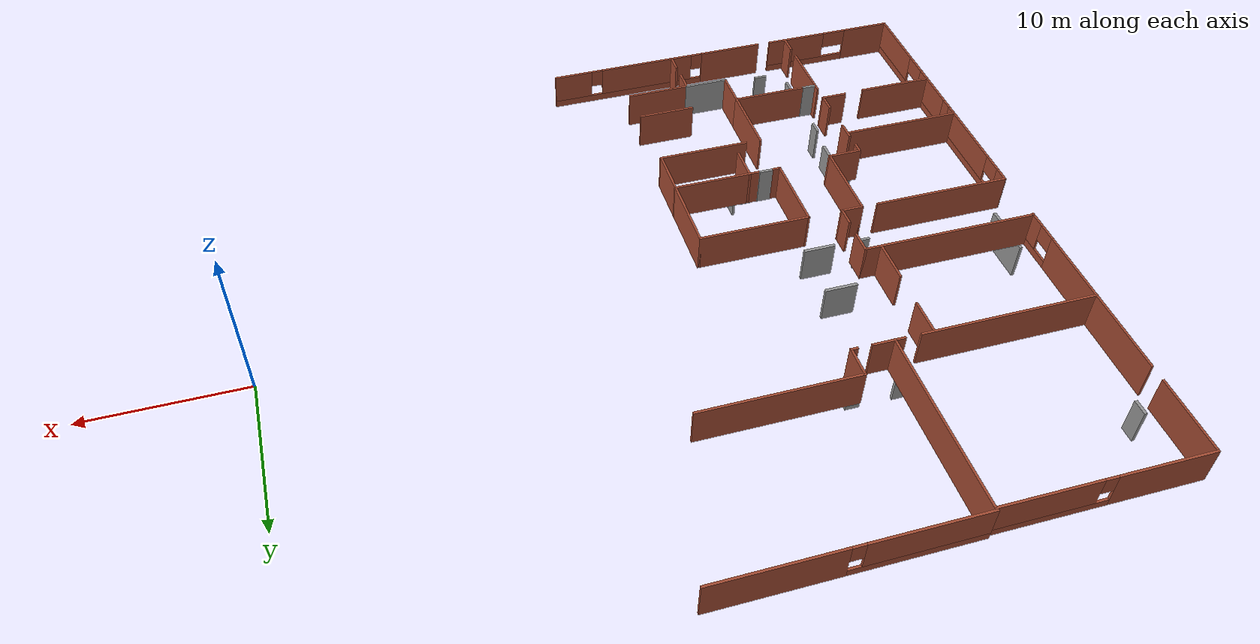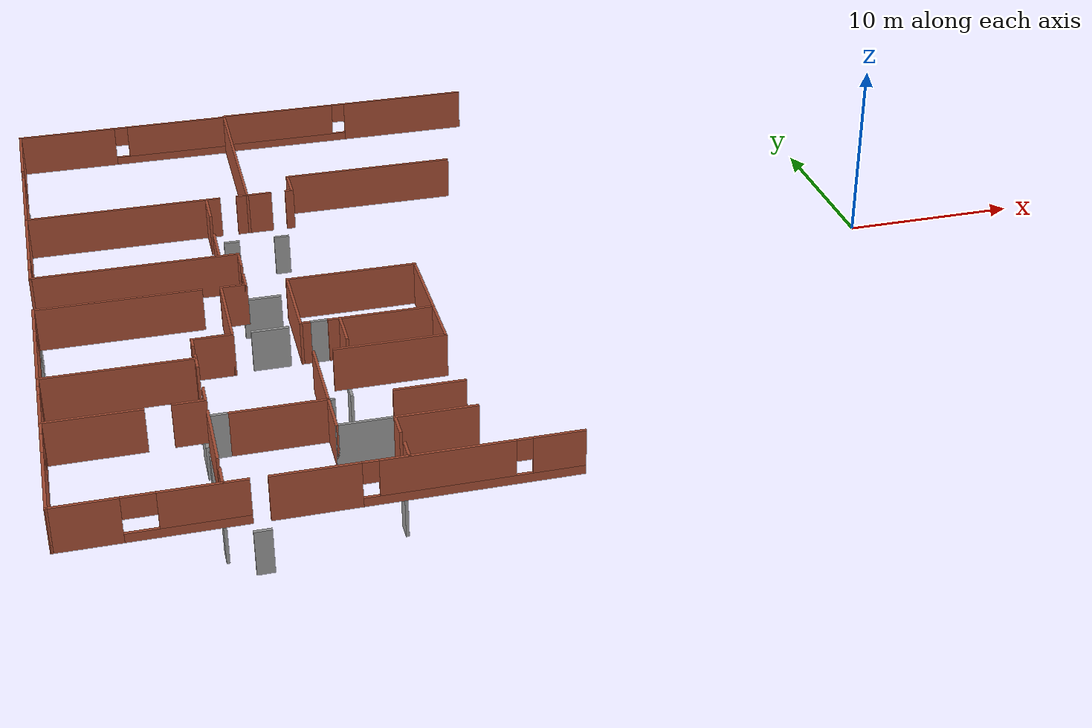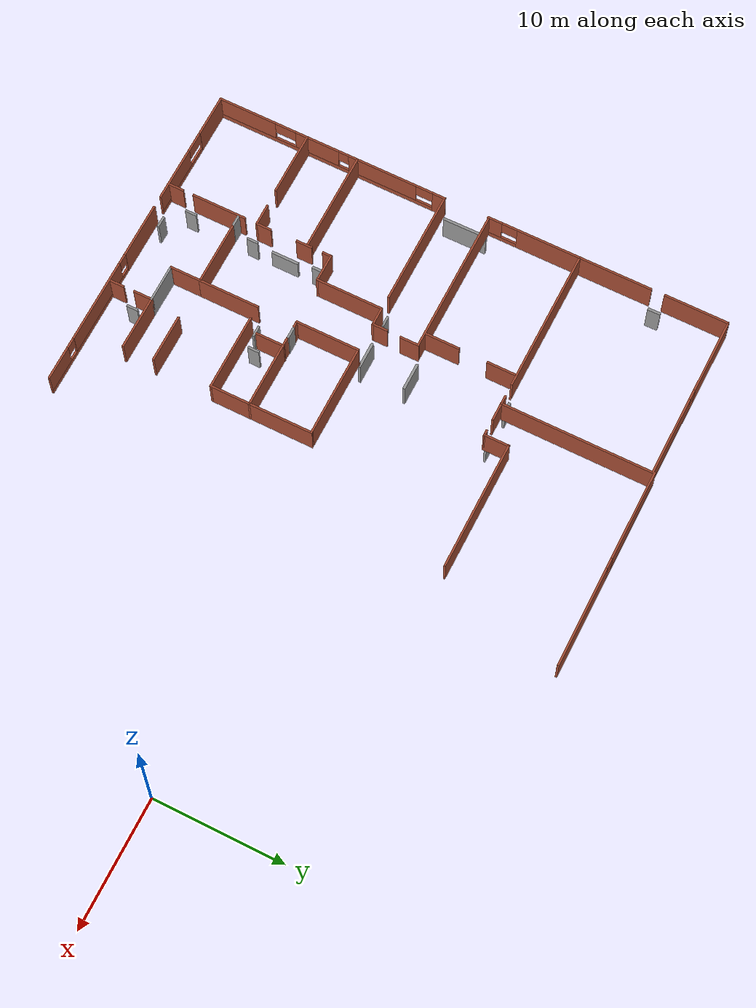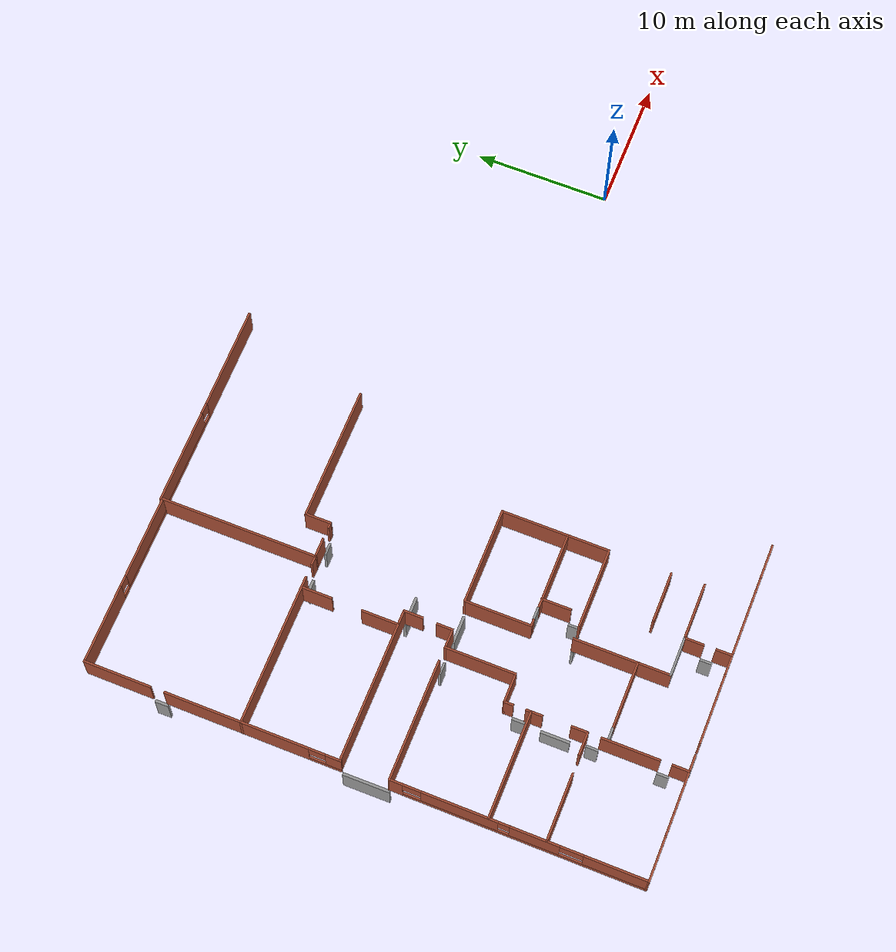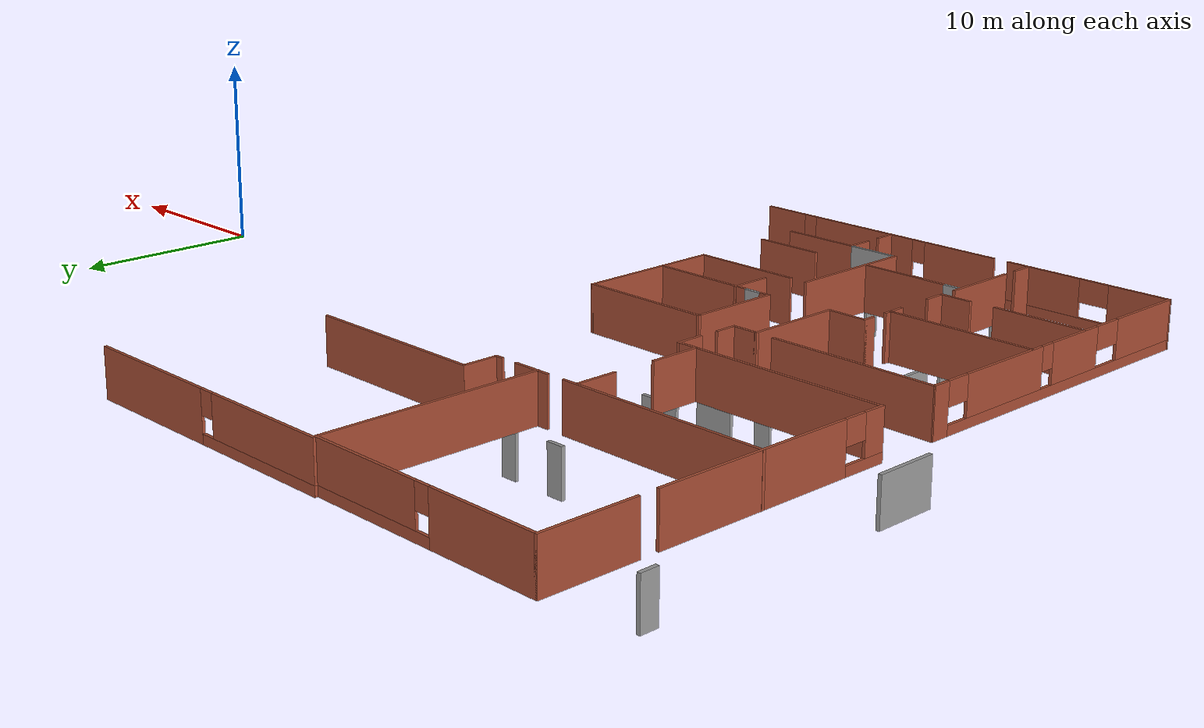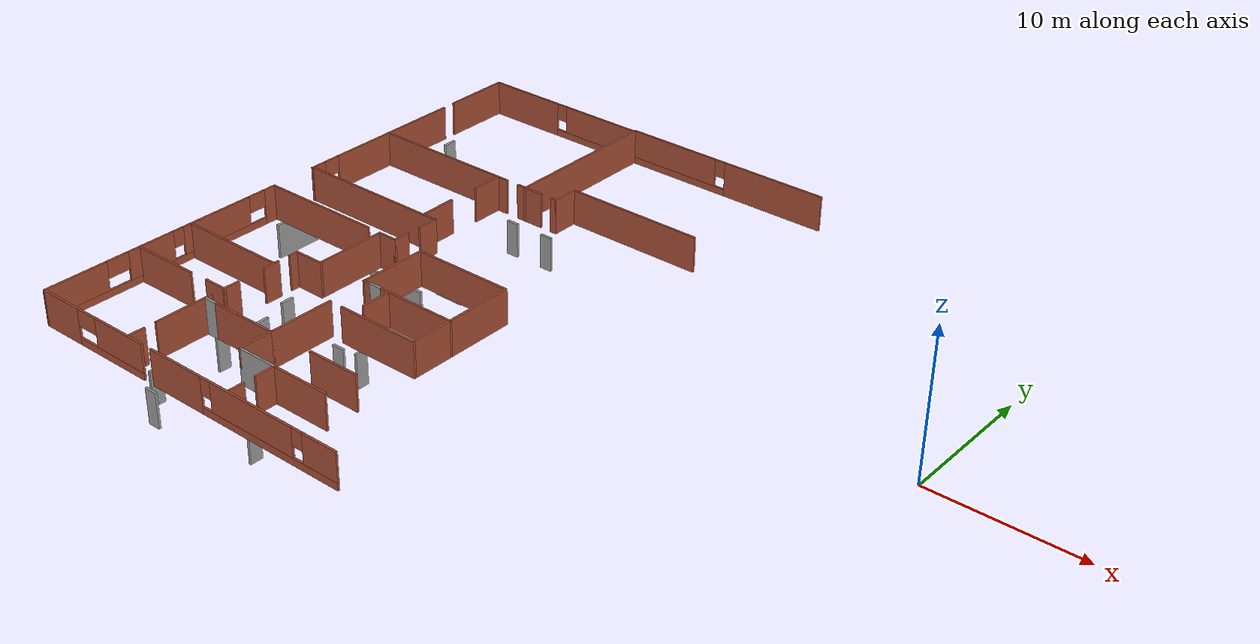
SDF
<sdf version="1.6">
 <model name="Bainer_Hall_FP">
  <pose>1.25513 -0.156837 0 0 -0 0</pose>
  <link name="Door_10">
   <collision name="Door_10_Collision">
    <geometry><box><size>0.9 0.17 2.5</size></box></geometry>
    <pose>0 0 1.25 0 -0 0</pose>
   </collision>
   <visual name="Door_10_Visual">
    <pose>0 0 1.25 0 -0 0</pose>
    <geometry><box><size>0.9 0.17 2.5</size></box></geometry>
    <material>
     <script><uri>file://media/materials/scripts/gazebo.material</uri><name>Gazebo/Grey</name></script>
    </material>
   </visual>
   <pose>-34.5626 8.65196 -3 0 -0 0</pose>
  </link>
  <link name="Door_12">
   <collision name="Door_12_Collision">
    <geometry><box><size>2.165 0.2 2.5</size></box></geometry>
    <pose>0 0 1.25 0 -0 0</pose>
   </collision>
   <visual name="Door_12_Visual">
    <pose>0 0 1.25 0 -0 0</pose>
    <geometry><box><size>2.165 0.2 2.5</size></box></geometry>
    <material>
     <script><uri>file://media/materials/scripts/gazebo.material</uri><name>Gazebo/Grey</name></script>
    </material>
   </visual>
   <pose>-36.6968 1.50114 -3 0 -0 0</pose>
  </link>
  <link name="Door_29">
   <collision name="Door_29_Collision">
    <geometry><box><size>0.9 0.17 2.5</size></box></geometry>
    <pose>0 0 1.25 0 -0 0</pose>
   </collision>
   <visual name="Door_29_Visual">
    <pose>0 0 1.25 0 -0 0</pose>
    <geometry><box><size>0.9 0.17 2.5</size></box></geometry>
    <material>
     <script><uri>file://media/materials/scripts/gazebo.material</uri><name>Gazebo/Grey</name></script>
    </material>
   </visual>
   <pose>-39.7621 -2.07664 -3 0 0 -3.14159</pose>
  </link>
  <link name="Door_30">
   <collision name="Door_30_Collision">
    <geometry><box><size>2.11069 0.2 2.5</size></box></geometry>
    <pose>0 0 1.25 0 -0 0</pose>
   </collision>
   <visual name="Door_30_Visual">
    <pose>0 0 1.25 0 -0 0</pose>
    <geometry><box><size>2.11069 0.2 2.5</size></box></geometry>
    <material>
     <script><uri>file://media/materials/scripts/gazebo.material</uri><name>Gazebo/Grey</name></script>
    </material>
   </visual>
   <pose>-36.7462 -2.09134 -3 0 -0 0</pose>
  </link>
  <link name="Door_31">
   <collision name="Door_31_Collision">
    <geometry><box><size>0.9 0.17 2.5</size></box></geometry>
    <pose>0 0 1.25 0 -0 0</pose>
   </collision>
   <visual name="Door_31_Visual">
    <pose>0 0 1.25 0 -0 0</pose>
    <geometry><box><size>0.9 0.17 2.5</size></box></geometry>
    <material>
     <script><uri>file://media/materials/scripts/gazebo.material</uri><name>Gazebo/Grey</name></script>
    </material>
   </visual>
   <pose>-34.6539 -6.91196 0 0 -0 0</pose>
  </link>
  <link name="Door_49">
   <collision name="Door_49_Collision">
    <geometry><box><size>0.94 0.2 2.5</size></box></geometry>
    <pose>0 0 1.25 0 -0 0</pose>
   </collision>
   <visual name="Door_49_Visual">
    <pose>0 0 1.25 0 -0 0</pose>
    <geometry><box><size>0.94 0.2 2.5</size></box></geometry>
    <material>
     <script><uri>file://media/materials/scripts/gazebo.material</uri><name>Gazebo/Grey</name></script>
    </material>
   </visual>
   <pose>-41.3093 -8.28276 -3 0 -0 1.57919</pose>
  </link>
  <link name="Door_50">
   <collision name="Door_50_Collision">
    <geometry><box><size>2.14227 0.2 2</size></box></geometry>
    <pose>0 0 1 0 -0 0</pose>
   </collision>
   <visual name="Door_50_Visual">
    <pose>0 0 1 0 -0 0</pose>
    <geometry><box><size>2.14227 0.2 2</size></box></geometry>
    <material>
     <script><uri>file://media/materials/scripts/gazebo.material</uri><name>Gazebo/Grey</name></script>
    </material>
   </visual>
   <pose>-41.3097 -10.9944 -3 0 -0 1.5708</pose>
  </link>
  <link name="Door_51">
   <collision name="Door_51_Collision">
    <geometry><box><size>0.9 0.17 2.5</size></box></geometry>
    <pose>0 0 1.25 0 -0 0</pose>
   </collision>
   <visual name="Door_51_Visual">
    <pose>0 0 1.25 0 -0 0</pose>
    <geometry><box><size>0.9 0.17 2.5</size></box></geometry>
    <material>
     <script><uri>file://media/materials/scripts/gazebo.material</uri><name>Gazebo/Grey</name></script>
    </material>
   </visual>
   <pose>-41.2641 -13.6308 -3 0 0 -1.57632</pose>
  </link>
  <link name="Door_52">
   <collision name="Door_52_Collision">
    <geometry><box><size>0.9 0.17 2.5</size></box></geometry>
    <pose>0 0 1.25 0 -0 0</pose>
   </collision>
   <visual name="Door_52_Visual">
    <pose>0 0 1.25 0 -0 0</pose>
    <geometry><box><size>0.9 0.17 2.5</size></box></geometry>
    <material>
     <script><uri>file://media/materials/scripts/gazebo.material</uri><name>Gazebo/Grey</name></script>
    </material>
   </visual>
   <pose>-41.2637 -18.7055 -3 0 -0 1.5708</pose>
  </link>
  <link name="Door_53">
   <collision name="Door_53_Collision">
    <geometry><box><size>0.9 0.17 2.5</size></box></geometry>
    <pose>0 0 1.25 0 -0 0</pose>
   </collision>
   <visual name="Door_53_Visual">
    <pose>0 0 1.25 0 -0 0</pose>
    <geometry><box><size>0.9 0.17 2.5</size></box></geometry>
    <material>
     <script><uri>file://media/materials/scripts/gazebo.material</uri><name>Gazebo/Grey</name></script>
    </material>
   </visual>
   <pose>-40.7662 -14.5556 0 0 -0 0</pose>
  </link>
  <link name="Door_54">
   <collision name="Door_54_Collision">
    <geometry><box><size>0.9 0.17 2.5</size></box></geometry>
    <pose>0 0 1.25 0 -0 0</pose>
   </collision>
   <visual name="Door_54_Visual">
    <pose>0 0 1.25 0 -0 0</pose>
    <geometry><box><size>0.9 0.17 2.5</size></box></geometry>
    <material>
     <script><uri>file://media/materials/scripts/gazebo.material</uri><name>Gazebo/Grey</name></script>
    </material>
   </visual>
   <pose>-32.5666 -18.7651 -3 0 0 -1.5708</pose>
  </link>
  <link name="Door_56">
   <collision name="Door_56_Collision">
    <geometry><box><size>0.9 0.17 2.5</size></box></geometry>
    <pose>0 0 1.25 0 -0 0</pose>
   </collision>
   <visual name="Door_56_Visual">
    <pose>0 0 1.25 0 -0 0</pose>
    <geometry><box><size>0.9 0.17 2.5</size></box></geometry>
    <material>
     <script><uri>file://media/materials/scripts/gazebo.material</uri><name>Gazebo/Grey</name></script>
    </material>
   </visual>
   <pose>-34.8989 -9.9638 -3 0 -0 0</pose>
  </link>
  <link name="Door_57">
   <collision name="Door_57_Collision">
    <geometry><box><size>0.9 0.17 2.5</size></box></geometry>
    <pose>0 0 1.25 0 -0 0</pose>
   </collision>
   <visual name="Door_57_Visual">
    <pose>0 0 1.25 0 -0 0</pose>
    <geometry><box><size>0.9 0.17 2.5</size></box></geometry>
    <material>
     <script><uri>file://media/materials/scripts/gazebo.material</uri><name>Gazebo/Grey</name></script>
    </material>
   </visual>
   <pose>-33.5499 -9.44231 -3 0 -0 1.5708</pose>
  </link>
  <link name="Door_59">
   <collision name="Door_59_Collision">
    <geometry><box><size>0.9 0.17 2.5</size></box></geometry>
    <pose>0 0 1.25 0 -0 0</pose>
   </collision>
   <visual name="Door_59_Visual">
    <pose>0 0 1.25 0 -0 0</pose>
    <geometry><box><size>0.9 0.17 2.5</size></box></geometry>
    <material>
     <script><uri>file://media/materials/scripts/gazebo.material</uri><name>Gazebo/Grey</name></script>
    </material>
   </visual>
   <pose>-39.6193 -20.3098 -3 0 -0 0</pose>
  </link>
  <link name="Door_6">
   <collision name="Door_6_Collision">
    <geometry><box><size>0.992 0.2 2.5</size></box></geometry>
    <pose>0 0 1.25 0 -0 0</pose>
   </collision>
   <visual name="Door_6_Visual">
    <pose>0 0 1.25 0 -0 0</pose>
    <geometry><box><size>0.992 0.2 2.5</size></box></geometry>
    <material>
     <script><uri>file://media/materials/scripts/gazebo.material</uri><name>Gazebo/Grey</name></script>
    </material>
   </visual>
   <pose>-49.1881 14.7778 -3 0 0 -1.55735</pose>
  </link>
  <link name="Door_78">
   <collision name="Door_78_Collision">
    <geometry><box><size>3.44 0.2 2.5</size></box></geometry>
    <pose>0 0 1.25 0 -0 0</pose>
   </collision>
   <visual name="Door_78_Visual">
    <pose>0 0 1.25 0 -0 0</pose>
    <geometry><box><size>3.44 0.2 2.5</size></box></geometry>
    <material>
     <script><uri>file://media/materials/scripts/gazebo.material</uri><name>Gazebo/Grey</name></script>
    </material>
   </visual>
   <pose>-49.1641 -0.320163 -3 0 -0 1.57718</pose>
  </link>
  <link name="Door_9">
   <collision name="Door_9_Collision">
    <geometry><box><size>0.927 0.2 2.5</size></box></geometry>
    <pose>0 0 1.25 0 -0 0</pose>
   </collision>
   <visual name="Door_9_Visual">
    <pose>0 0 1.25 0 -0 0</pose>
    <geometry><box><size>0.927 0.2 2.5</size></box></geometry>
    <material>
     <script><uri>file://media/materials/scripts/gazebo.material</uri><name>Gazebo/Grey</name></script>
    </material>
   </visual>
   <pose>-37.5493 8.66307 -3 0 -0 0</pose>
  </link>
  <link name="Wall_139">
   <collision name="Wall_139_Collision">
    <geometry><box><size>5 0.15 2.5</size></box></geometry>
    <pose>0 0 1.25 0 -0 0</pose>
   </collision>
   <visual name="Wall_139_Visual">
    <pose>0 0 1.25 0 -0 0</pose>
    <geometry><box><size>5 0.15 2.5</size></box></geometry>
    <material>
     <script><uri>file://media/materials/scripts/gazebo.material</uri><name>Gazebo/Bricks</name></script>
     <ambient>1 1 1 1</ambient>
    </material>
   </visual>
   <pose>-49.1917 17.7539 0 0 0 -1.5708</pose>
  </link>
  <link name="Wall_141">
   <pose>-49.1778 7.83841 0 0 0 -1.5708</pose>
   <visual name="Wall_141_Visual_0">
    <pose>-1.18334 0 1.25 0 -0 0</pose>
    <geometry><box><size>10.5535 0.15 2.5</size></box></geometry>
    <material>
     <script><uri>file://media/materials/scripts/gazebo.material</uri><name>Gazebo/Bricks</name></script>
     <ambient>1 1 1 1</ambient>
    </material>
   </visual>
   <collision name="Wall_141_Collision_0">
    <geometry><box><size>10.5535 0.15 2.5</size></box></geometry>
    <pose>-1.18334 0 1.25 0 -0 0</pose>
   </collision>
   <visual name="Wall_141_Visual_1">
    <pose>5.27675 0 0.25 0 -0 0</pose>
    <geometry><box><size>2.36667 0.15 0.5</size></box></geometry>
    <material>
     <script><uri>file://media/materials/scripts/gazebo.material</uri><name>Gazebo/Bricks</name></script>
     <ambient>1 1 1 1</ambient>
    </material>
   </visual>
   <collision name="Wall_141_Collision_1">
    <geometry><box><size>2.36667 0.15 0.5</size></box></geometry>
    <pose>5.27675 0 0.25 0 -0 0</pose>
   </collision>
   <visual name="Wall_141_Visual_2">
    <pose>5.8765 0 1.5 0 -0 0</pose>
    <geometry><box><size>1.16716 0.15 2</size></box></geometry>
    <material>
     <script><uri>file://media/materials/scripts/gazebo.material</uri><name>Gazebo/Bricks</name></script>
     <ambient>1 1 1 1</ambient>
    </material>
   </visual>
   <collision name="Wall_141_Collision_2">
    <geometry><box><size>1.16716 0.15 2</size></box></geometry>
    <pose>5.8765 0 1.5 0 -0 0</pose>
   </collision>
   <visual name="Wall_141_Visual_3">
    <pose>4.69316 0 1.9 0 -0 0</pose>
    <geometry><box><size>1.19951 0.15 1.2</size></box></geometry>
    <material>
     <script><uri>file://media/materials/scripts/gazebo.material</uri><name>Gazebo/Bricks</name></script>
     <ambient>1 1 1 1</ambient>
    </material>
   </visual>
   <collision name="Wall_141_Collision_3">
    <geometry><box><size>1.19951 0.15 1.2</size></box></geometry>
    <pose>4.69316 0 1.9 0 -0 0</pose>
   </collision>
  </link>
  <link name="Wall_142">
   <collision name="Wall_142_Collision">
    <geometry><box><size>11.5 0.15 2.5</size></box></geometry>
    <pose>0 0 1.25 0 -0 0</pose>
   </collision>
   <visual name="Wall_142_Visual">
    <pose>0 0 1.25 0 -0 0</pose>
    <geometry><box><size>11.5 0.15 2.5</size></box></geometry>
    <material>
     <script><uri>file://media/materials/scripts/gazebo.material</uri><name>Gazebo/Bricks</name></script>
     <ambient>1 1 1 1</ambient>
    </material>
   </visual>
   <pose>-43.5028 1.49587 0 0 -0 0</pose>
  </link>
  <link name="Wall_144">
   <pose>-38.8763 2.85932 0 0 -0 1.5708</pose>
   <visual name="Wall_144_Visual_0">
    <pose>-0.012077 0 1.25 0 -0 0</pose>
    <geometry><box><size>2.72585 0.15 2.5</size></box></geometry>
    <material>
     <script><uri>file://media/materials/scripts/gazebo.material</uri><name>Gazebo/Bricks</name></script>
     <ambient>1 1 1 1</ambient>
    </material>
   </visual>
   <collision name="Wall_144_Collision_0">
    <geometry><box><size>2.72585 0.15 2.5</size></box></geometry>
    <pose>-0.012077 0 1.25 0 -0 0</pose>
   </collision>
  </link>
  <link name="Wall_146">
   <collision name="Wall_146_Collision">
    <geometry><box><size>2.25 0.15 2.5</size></box></geometry>
    <pose>0 0 1.25 0 -0 0</pose>
   </collision>
   <visual name="Wall_146_Visual">
    <pose>0 0 1.25 0 -0 0</pose>
    <geometry><box><size>2.25 0.15 2.5</size></box></geometry>
    <material>
     <script><uri>file://media/materials/scripts/gazebo.material</uri><name>Gazebo/Bricks</name></script>
     <ambient>1 1 1 1</ambient>
    </material>
   </visual>
   <pose>-38.8285 7.50163 0 0 -0 1.5708</pose>
  </link>
  <link name="Wall_149">
   <collision name="Wall_149_Collision">
    <geometry><box><size>11.25 0.15 2.5</size></box></geometry>
    <pose>0 0 1.25 0 -0 0</pose>
   </collision>
   <visual name="Wall_149_Visual">
    <pose>0 0 1.25 0 -0 0</pose>
    <geometry><box><size>11.25 0.15 2.5</size></box></geometry>
    <material>
     <script><uri>file://media/materials/scripts/gazebo.material</uri><name>Gazebo/Bricks</name></script>
     <ambient>1 1 1 1</ambient>
    </material>
   </visual>
   <pose>-43.6354 8.66337 0 0 -0 3.14159</pose>
  </link>
  <link name="Wall_151">
   <pose>-42.79 20.1789 0 0 -0 0</pose>
   <visual name="Wall_151_Visual_0">
    <pose>-3.52424 0 1.25 0 -0 0</pose>
    <geometry><box><size>5.85812 0.15 2.5</size></box></geometry>
    <material>
     <script><uri>file://media/materials/scripts/gazebo.material</uri><name>Gazebo/Bricks</name></script>
     <ambient>1 1 1 1</ambient>
    </material>
   </visual>
   <collision name="Wall_151_Collision_0">
    <geometry><box><size>5.85812 0.15 2.5</size></box></geometry>
    <pose>-3.52424 0 1.25 0 -0 0</pose>
   </collision>
   <visual name="Wall_151_Visual_1">
    <pose>2.92906 0 0.25 0 -0 0</pose>
    <geometry><box><size>7.04848 0.15 0.5</size></box></geometry>
    <material>
     <script><uri>file://media/materials/scripts/gazebo.material</uri><name>Gazebo/Bricks</name></script>
     <ambient>1 1 1 1</ambient>
    </material>
   </visual>
   <collision name="Wall_151_Collision_1">
    <geometry><box><size>7.04848 0.15 0.5</size></box></geometry>
    <pose>2.92906 0 0.25 0 -0 0</pose>
   </collision>
   <visual name="Wall_151_Visual_2">
    <pose>3.32906 0 1.5 0 -0 0</pose>
    <geometry><box><size>6.24848 0.15 2</size></box></geometry>
    <material>
     <script><uri>file://media/materials/scripts/gazebo.material</uri><name>Gazebo/Bricks</name></script>
     <ambient>1 1 1 1</ambient>
    </material>
   </visual>
   <collision name="Wall_151_Collision_2">
    <geometry><box><size>6.24848 0.15 2</size></box></geometry>
    <pose>3.32906 0 1.5 0 -0 0</pose>
   </collision>
   <visual name="Wall_151_Visual_3">
    <pose>-0.195183 0 1.9 0 -0 0</pose>
    <geometry><box><size>0.8 0.15 1.2</size></box></geometry>
    <material>
     <script><uri>file://media/materials/scripts/gazebo.material</uri><name>Gazebo/Bricks</name></script>
     <ambient>1 1 1 1</ambient>
    </material>
   </visual>
   <collision name="Wall_151_Collision_3">
    <geometry><box><size>0.8 0.15 1.2</size></box></geometry>
    <pose>-0.195183 0 1.9 0 -0 0</pose>
   </collision>
  </link>
  <link name="Wall_152">
   <collision name="Wall_152_Collision">
    <geometry><box><size>11.6739 0.15 2.5</size></box></geometry>
    <pose>0 0 1.25 0 -0 0</pose>
   </collision>
   <visual name="Wall_152_Visual">
    <pose>0 0 1.25 0 -0 0</pose>
    <geometry><box><size>11.6739 0.15 2.5</size></box></geometry>
    <material>
     <script><uri>file://media/materials/scripts/gazebo.material</uri><name>Gazebo/Bricks</name></script>
     <ambient>1 1 1 1</ambient>
    </material>
   </visual>
   <pose>-36.4117 14.417 0 0 0 -1.5708</pose>
  </link>
  <link name="Wall_153">
   <collision name="Wall_153_Collision">
    <geometry><box><size>0.75 0.15 2.5</size></box></geometry>
    <pose>0 0 1.25 0 -0 0</pose>
   </collision>
   <visual name="Wall_153_Visual">
    <pose>0 0 1.25 0 -0 0</pose>
    <geometry><box><size>0.75 0.15 2.5</size></box></geometry>
    <material>
     <script><uri>file://media/materials/scripts/gazebo.material</uri><name>Gazebo/Bricks</name></script>
     <ambient>1 1 1 1</ambient>
    </material>
   </visual>
   <pose>-36.7117 8.66175 0 0 -0 3.14159</pose>
  </link>
  <link name="Wall_155">
   <collision name="Wall_155_Collision">
    <geometry><box><size>1.5 0.15 2.5</size></box></geometry>
    <pose>0 0 1.25 0 -0 0</pose>
   </collision>
   <visual name="Wall_155_Visual">
    <pose>0 0 1.25 0 -0 0</pose>
    <geometry><box><size>1.5 0.15 2.5</size></box></geometry>
    <material>
     <script><uri>file://media/materials/scripts/gazebo.material</uri><name>Gazebo/Bricks</name></script>
     <ambient>1 1 1 1</ambient>
    </material>
   </visual>
   <pose>-35.7367 8.66175 0 0 -0 0</pose>
  </link>
  <link name="Wall_157">
   <collision name="Wall_157_Collision">
    <geometry><box><size>0.5 0.15 2.5</size></box></geometry>
    <pose>0 0 1.25 0 -0 0</pose>
   </collision>
   <visual name="Wall_157_Visual">
    <pose>0 0 1.25 0 -0 0</pose>
    <geometry><box><size>0.5 0.15 2.5</size></box></geometry>
    <material>
     <script><uri>file://media/materials/scripts/gazebo.material</uri><name>Gazebo/Bricks</name></script>
     <ambient>1 1 1 1</ambient>
    </material>
   </visual>
   <pose>-33.9261 8.65196 0 0 -0 0</pose>
  </link>
  <link name="Wall_158">
   <collision name="Wall_158_Collision">
    <geometry><box><size>2 0.15 2.5</size></box></geometry>
    <pose>0 0 1.25 0 -0 0</pose>
   </collision>
   <visual name="Wall_158_Visual">
    <pose>0 0 1.25 0 -0 0</pose>
    <geometry><box><size>2 0.15 2.5</size></box></geometry>
    <material>
     <script><uri>file://media/materials/scripts/gazebo.material</uri><name>Gazebo/Bricks</name></script>
     <ambient>1 1 1 1</ambient>
    </material>
   </visual>
   <pose>-33.7511 9.57696 0 0 -0 1.5708</pose>
  </link>
  <link name="Wall_161">
   <collision name="Wall_161_Collision">
    <geometry><box><size>10 0.15 2.5</size></box></geometry>
    <pose>0 0 1.25 0 -0 0</pose>
   </collision>
   <visual name="Wall_161_Visual">
    <pose>0 0 1.25 0 -0 0</pose>
    <geometry><box><size>10 0.15 2.5</size></box></geometry>
    <material>
     <script><uri>file://media/materials/scripts/gazebo.material</uri><name>Gazebo/Bricks</name></script>
     <ambient>1 1 1 1</ambient>
    </material>
   </visual>
   <pose>-28.8261 10.502 0 0 -0 0</pose>
  </link>
  <link name="Wall_165">
   <pose>-28.7018 20.3376 0 0 0 -3.13852</pose>
   <visual name="Wall_165_Visual_0">
    <pose>-3.9449 0 1.25 0 -0 0</pose>
    <geometry><box><size>7.72571 0.15 2.5</size></box></geometry>
    <material>
     <script><uri>file://media/materials/scripts/gazebo.material</uri><name>Gazebo/Bricks</name></script>
     <ambient>1 1 1 1</ambient>
    </material>
   </visual>
   <collision name="Wall_165_Collision_0">
    <geometry><box><size>7.72571 0.15 2.5</size></box></geometry>
    <pose>-3.9449 0 1.25 0 -0 0</pose>
   </collision>
   <visual name="Wall_165_Visual_1">
    <pose>3.86285 0 0.25 0 -0 0</pose>
    <geometry><box><size>7.88981 0.15 0.5</size></box></geometry>
    <material>
     <script><uri>file://media/materials/scripts/gazebo.material</uri><name>Gazebo/Bricks</name></script>
     <ambient>1 1 1 1</ambient>
    </material>
   </visual>
   <collision name="Wall_165_Collision_1">
    <geometry><box><size>7.88981 0.15 0.5</size></box></geometry>
    <pose>3.86285 0 0.25 0 -0 0</pose>
   </collision>
   <visual name="Wall_165_Visual_2">
    <pose>4.26285 0 1.5 0 -0 0</pose>
    <geometry><box><size>7.08981 0.15 2</size></box></geometry>
    <material>
     <script><uri>file://media/materials/scripts/gazebo.material</uri><name>Gazebo/Bricks</name></script>
     <ambient>1 1 1 1</ambient>
    </material>
   </visual>
   <collision name="Wall_165_Collision_2">
    <geometry><box><size>7.08981 0.15 2</size></box></geometry>
    <pose>4.26285 0 1.5 0 -0 0</pose>
   </collision>
   <visual name="Wall_165_Visual_3">
    <pose>0.317949 0 1.9 0 -0 0</pose>
    <geometry><box><size>0.8 0.15 1.2</size></box></geometry>
    <material>
     <script><uri>file://media/materials/scripts/gazebo.material</uri><name>Gazebo/Bricks</name></script>
     <ambient>1 1 1 1</ambient>
    </material>
   </visual>
   <collision name="Wall_165_Collision_3">
    <geometry><box><size>0.8 0.15 1.2</size></box></geometry>
    <pose>0.317949 0 1.9 0 -0 0</pose>
   </collision>
  </link>
  <link name="Wall_250">
   <collision name="Wall_250_Collision">
    <geometry><box><size>1.5 0.15 2.5</size></box></geometry>
    <pose>0 0 1.25 0 -0 0</pose>
   </collision>
   <visual name="Wall_250_Visual">
    <pose>0 0 1.25 0 -0 0</pose>
    <geometry><box><size>1.5 0.15 2.5</size></box></geometry>
    <material>
     <script><uri>file://media/materials/scripts/gazebo.material</uri><name>Gazebo/Bricks</name></script>
     <ambient>1 1 1 1</ambient>
    </material>
   </visual>
   <pose>-37.8278 0.820873 0 0 0 -1.5708</pose>
  </link>
  <link name="Wall_252">
   <collision name="Wall_252_Collision">
    <geometry><box><size>1.25 0.15 2.5</size></box></geometry>
    <pose>0 0 1.25 0 -0 0</pose>
   </collision>
   <visual name="Wall_252_Visual">
    <pose>0 0 1.25 0 -0 0</pose>
    <geometry><box><size>1.25 0.15 2.5</size></box></geometry>
    <material>
     <script><uri>file://media/materials/scripts/gazebo.material</uri><name>Gazebo/Bricks</name></script>
     <ambient>1 1 1 1</ambient>
    </material>
   </visual>
   <pose>-37.869 -1.5252 0 0 0 -1.5708</pose>
  </link>
  <link name="Wall_253">
   <collision name="Wall_253_Collision">
    <geometry><box><size>1.5 0.15 2.5</size></box></geometry>
    <pose>0 0 1.25 0 -0 0</pose>
   </collision>
   <visual name="Wall_253_Visual">
    <pose>0 0 1.25 0 -0 0</pose>
    <geometry><box><size>1.5 0.15 2.5</size></box></geometry>
    <material>
     <script><uri>file://media/materials/scripts/gazebo.material</uri><name>Gazebo/Bricks</name></script>
     <ambient>1 1 1 1</ambient>
    </material>
   </visual>
   <pose>-38.544 -2.0752 0 0 -0 3.14159</pose>
  </link>
  <link name="Wall_255">
   <collision name="Wall_255_Collision">
    <geometry><box><size>9 0.15 2.5</size></box></geometry>
    <pose>0 0 1.25 0 -0 0</pose>
   </collision>
   <visual name="Wall_255_Visual">
    <pose>0 0 1.25 0 -0 0</pose>
    <geometry><box><size>9 0.15 2.5</size></box></geometry>
    <material>
     <script><uri>file://media/materials/scripts/gazebo.material</uri><name>Gazebo/Bricks</name></script>
     <ambient>1 1 1 1</ambient>
    </material>
   </visual>
   <pose>-44.7163 -2.04439 0 0 -0 3.14159</pose>
  </link>
  <link name="Wall_256">
   <pose>-49.1661 -11.1698 0 0 0 -1.57351</pose>
   <visual name="Wall_256_Visual_0">
    <pose>-8.68915 0 1.25 0 -0 0</pose>
    <geometry><box><size>1.02252 0.15 2.5</size></box></geometry>
    <material>
     <script><uri>file://media/materials/scripts/gazebo.material</uri><name>Gazebo/Bricks</name></script>
     <ambient>1 1 1 1</ambient>
    </material>
   </visual>
   <collision name="Wall_256_Collision_0">
    <geometry><box><size>1.02252 0.15 2.5</size></box></geometry>
    <pose>-8.68915 0 1.25 0 -0 0</pose>
   </collision>
   <visual name="Wall_256_Visual_1">
    <pose>0.511259 0 0.25 0 -0 0</pose>
    <geometry><box><size>17.3783 0.15 0.5</size></box></geometry>
    <material>
     <script><uri>file://media/materials/scripts/gazebo.material</uri><name>Gazebo/Bricks</name></script>
     <ambient>1 1 1 1</ambient>
    </material>
   </visual>
   <collision name="Wall_256_Collision_1">
    <geometry><box><size>17.3783 0.15 0.5</size></box></geometry>
    <pose>0.511259 0 0.25 0 -0 0</pose>
   </collision>
   <visual name="Wall_256_Visual_2">
    <pose>-4.12221 0 1.5 0 -0 0</pose>
    <geometry><box><size>5.47242 0.15 2</size></box></geometry>
    <material>
     <script><uri>file://media/materials/scripts/gazebo.material</uri><name>Gazebo/Bricks</name></script>
     <ambient>1 1 1 1</ambient>
    </material>
   </visual>
   <collision name="Wall_256_Collision_2">
    <geometry><box><size>5.47242 0.15 2</size></box></geometry>
    <pose>-4.12221 0 1.5 0 -0 0</pose>
   </collision>
   <visual name="Wall_256_Visual_3">
    <pose>1.1798 0 1.5 0 -0 0</pose>
    <geometry><box><size>3.5316 0.15 2</size></box></geometry>
    <material>
     <script><uri>file://media/materials/scripts/gazebo.material</uri><name>Gazebo/Bricks</name></script>
     <ambient>1 1 1 1</ambient>
    </material>
   </visual>
   <collision name="Wall_256_Collision_3">
    <geometry><box><size>3.5316 0.15 2</size></box></geometry>
    <pose>1.1798 0 1.5 0 -0 0</pose>
   </collision>
   <visual name="Wall_256_Visual_4">
    <pose>6.89568 0 1.5 0 -0 0</pose>
    <geometry><box><size>4.60945 0.15 2</size></box></geometry>
    <material>
     <script><uri>file://media/materials/scripts/gazebo.material</uri><name>Gazebo/Bricks</name></script>
     <ambient>1 1 1 1</ambient>
    </material>
   </visual>
   <collision name="Wall_256_Collision_4">
    <geometry><box><size>4.60945 0.15 2</size></box></geometry>
    <pose>6.89568 0 1.5 0 -0 0</pose>
   </collision>
   <visual name="Wall_256_Visual_5">
    <pose>-7.51816 0 1.9 0 -0 0</pose>
    <geometry><box><size>1.31947 0.15 1.2</size></box></geometry>
    <material>
     <script><uri>file://media/materials/scripts/gazebo.material</uri><name>Gazebo/Bricks</name></script>
     <ambient>1 1 1 1</ambient>
    </material>
   </visual>
   <collision name="Wall_256_Collision_5">
    <geometry><box><size>1.31947 0.15 1.2</size></box></geometry>
    <pose>-7.51816 0 1.9 0 -0 0</pose>
   </collision>
   <visual name="Wall_256_Visual_6">
    <pose>-0.986003 0 1.9 0 -0 0</pose>
    <geometry><box><size>0.8 0.15 1.2</size></box></geometry>
    <material>
     <script><uri>file://media/materials/scripts/gazebo.material</uri><name>Gazebo/Bricks</name></script>
     <ambient>1 1 1 1</ambient>
    </material>
   </visual>
   <collision name="Wall_256_Collision_6">
    <geometry><box><size>0.8 0.15 1.2</size></box></geometry>
    <pose>-0.986003 0 1.9 0 -0 0</pose>
   </collision>
   <visual name="Wall_256_Visual_7">
    <pose>3.76828 0 1.9 0 -0 0</pose>
    <geometry><box><size>1.64536 0.15 1.2</size></box></geometry>
    <material>
     <script><uri>file://media/materials/scripts/gazebo.material</uri><name>Gazebo/Bricks</name></script>
     <ambient>1 1 1 1</ambient>
    </material>
   </visual>
   <collision name="Wall_256_Collision_7">
    <geometry><box><size>1.64536 0.15 1.2</size></box></geometry>
    <pose>3.76828 0 1.9 0 -0 0</pose>
   </collision>
  </link>
  <link name="Wall_259">
   <collision name="Wall_259_Collision">
    <geometry><box><size>7.25 0.15 2.5</size></box></geometry>
    <pose>0 0 1.25 0 -0 0</pose>
   </collision>
   <visual name="Wall_259_Visual">
    <pose>0 0 1.25 0 -0 0</pose>
    <geometry><box><size>7.25 0.15 2.5</size></box></geometry>
    <material>
     <script><uri>file://media/materials/scripts/gazebo.material</uri><name>Gazebo/Bricks</name></script>
     <ambient>1 1 1 1</ambient>
    </material>
   </visual>
   <pose>-32.0685 -2.08429 0 0 -0 0</pose>
  </link>
  <link name="Wall_261">
   <collision name="Wall_261_Collision">
    <geometry><box><size>5 0.15 2.5</size></box></geometry>
    <pose>0 0 1.25 0 -0 0</pose>
   </collision>
   <visual name="Wall_261_Visual">
    <pose>0 0 1.25 0 -0 0</pose>
    <geometry><box><size>5 0.15 2.5</size></box></geometry>
    <material>
     <script><uri>file://media/materials/scripts/gazebo.material</uri><name>Gazebo/Bricks</name></script>
     <ambient>1 1 1 1</ambient>
    </material>
   </visual>
   <pose>-28.5185 -4.50929 0 0 0 -1.5708</pose>
  </link>
  <link name="Wall_262">
   <collision name="Wall_262_Collision">
    <geometry><box><size>5.75 0.15 2.5</size></box></geometry>
    <pose>0 0 1.25 0 -0 0</pose>
   </collision>
   <visual name="Wall_262_Visual">
    <pose>0 0 1.25 0 -0 0</pose>
    <geometry><box><size>5.75 0.15 2.5</size></box></geometry>
    <material>
     <script><uri>file://media/materials/scripts/gazebo.material</uri><name>Gazebo/Bricks</name></script>
     <ambient>1 1 1 1</ambient>
    </material>
   </visual>
   <pose>-31.3185 -6.93429 0 0 -0 3.14159</pose>
  </link>
  <link name="Wall_264">
   <collision name="Wall_264_Collision">
    <geometry><box><size>5 0.15 2.5</size></box></geometry>
    <pose>0 0 1.25 0 -0 0</pose>
   </collision>
   <visual name="Wall_264_Visual">
    <pose>0 0 1.25 0 -0 0</pose>
    <geometry><box><size>5 0.15 2.5</size></box></geometry>
    <material>
     <script><uri>file://media/materials/scripts/gazebo.material</uri><name>Gazebo/Bricks</name></script>
     <ambient>1 1 1 1</ambient>
    </material>
   </visual>
   <pose>-35.6183 -4.50923 0 0 0 -1.57073</pose>
  </link>
  <link name="Wall_266">
   <collision name="Wall_266_Collision">
    <geometry><box><size>0.59 0.15 2.5</size></box></geometry>
    <pose>0 0 1.25 0 -0 0</pose>
   </collision>
   <visual name="Wall_266_Visual">
    <pose>0 0 1.25 0 -0 0</pose>
    <geometry><box><size>0.59 0.15 2.5</size></box></geometry>
    <material>
     <script><uri>file://media/materials/scripts/gazebo.material</uri><name>Gazebo/Bricks</name></script>
     <ambient>1 1 1 1</ambient>
    </material>
   </visual>
   <pose>-35.3981 -6.93416 0 0 -0 0</pose>
  </link>
  <link name="Wall_318">
   <collision name="Wall_318_Collision">
    <geometry><box><size>5.25 0.15 2.5</size></box></geometry>
    <pose>0 0 1.25 0 -0 0</pose>
   </collision>
   <visual name="Wall_318_Visual">
    <pose>0 0 1.25 0 -0 0</pose>
    <geometry><box><size>5.25 0.15 2.5</size></box></geometry>
    <material>
     <script><uri>file://media/materials/scripts/gazebo.material</uri><name>Gazebo/Bricks</name></script>
     <ambient>1 1 1 1</ambient>
    </material>
   </visual>
   <pose>-39.219 -4.6252 0 0 0 -1.5708</pose>
  </link>
  <link name="Wall_319">
   <collision name="Wall_319_Collision">
    <geometry><box><size>2.25 0.15 2.5</size></box></geometry>
    <pose>0 0 1.25 0 -0 0</pose>
   </collision>
   <visual name="Wall_319_Visual">
    <pose>0 0 1.25 0 -0 0</pose>
    <geometry><box><size>2.25 0.15 2.5</size></box></geometry>
    <material>
     <script><uri>file://media/materials/scripts/gazebo.material</uri><name>Gazebo/Bricks</name></script>
     <ambient>1 1 1 1</ambient>
    </material>
   </visual>
   <pose>-40.269 -7.1752 0 0 -0 3.14159</pose>
  </link>
  <link name="Wall_320">
   <collision name="Wall_320_Collision">
    <geometry><box><size>0.75 0.15 2.5</size></box></geometry>
    <pose>0 0 1.25 0 -0 0</pose>
   </collision>
   <visual name="Wall_320_Visual">
    <pose>0 0 1.25 0 -0 0</pose>
    <geometry><box><size>0.75 0.15 2.5</size></box></geometry>
    <material>
     <script><uri>file://media/materials/scripts/gazebo.material</uri><name>Gazebo/Bricks</name></script>
     <ambient>1 1 1 1</ambient>
    </material>
   </visual>
   <pose>-41.319 -7.4752 0 0 0 -1.5708</pose>
  </link>
  <link name="Wall_322">
   <collision name="Wall_322_Collision">
    <geometry><box><size>1.25 0.15 2.5</size></box></geometry>
    <pose>0 0 1.25 0 -0 0</pose>
   </collision>
   <visual name="Wall_322_Visual">
    <pose>0 0 1.25 0 -0 0</pose>
    <geometry><box><size>1.25 0.15 2.5</size></box></geometry>
    <material>
     <script><uri>file://media/materials/scripts/gazebo.material</uri><name>Gazebo/Bricks</name></script>
     <ambient>1 1 1 1</ambient>
    </material>
   </visual>
   <pose>-41.3048 -9.31928 0 0 0 -1.5708</pose>
  </link>
  <link name="Wall_324">
   <collision name="Wall_324_Collision">
    <geometry><box><size>1.25 0.15 2.5</size></box></geometry>
    <pose>0 0 1.25 0 -0 0</pose>
   </collision>
   <visual name="Wall_324_Visual">
    <pose>0 0 1.25 0 -0 0</pose>
    <geometry><box><size>1.25 0.15 2.5</size></box></geometry>
    <material>
     <script><uri>file://media/materials/scripts/gazebo.material</uri><name>Gazebo/Bricks</name></script>
     <ambient>1 1 1 1</ambient>
    </material>
   </visual>
   <pose>-41.2554 -12.557 0 0 0 -1.5708</pose>
  </link>
  <link name="Wall_325">
   <collision name="Wall_325_Collision">
    <geometry><box><size>1.75 0.15 2.5</size></box></geometry>
    <pose>0 0 1.25 0 -0 0</pose>
   </collision>
   <visual name="Wall_325_Visual">
    <pose>0 0 1.25 0 -0 0</pose>
    <geometry><box><size>1.75 0.15 2.5</size></box></geometry>
    <material>
     <script><uri>file://media/materials/scripts/gazebo.material</uri><name>Gazebo/Bricks</name></script>
     <ambient>1 1 1 1</ambient>
    </material>
   </visual>
   <pose>-42.0554 -13.107 0 0 -0 3.14159</pose>
  </link>
  <link name="Wall_327">
   <collision name="Wall_327_Collision">
    <geometry><box><size>4.25 0.15 2.5</size></box></geometry>
    <pose>0 0 1.25 0 -0 0</pose>
   </collision>
   <visual name="Wall_327_Visual">
    <pose>0 0 1.25 0 -0 0</pose>
    <geometry><box><size>4.25 0.15 2.5</size></box></geometry>
    <material>
     <script><uri>file://media/materials/scripts/gazebo.material</uri><name>Gazebo/Bricks</name></script>
     <ambient>1 1 1 1</ambient>
    </material>
   </visual>
   <pose>-41.2637 -16.1711 0 0 0 -1.5708</pose>
  </link>
  <link name="Wall_329">
   <collision name="Wall_329_Collision">
    <geometry><box><size>1.25 0.15 2.5</size></box></geometry>
    <pose>0 0 1.25 0 -0 0</pose>
   </collision>
   <visual name="Wall_329_Visual">
    <pose>0 0 1.25 0 -0 0</pose>
    <geometry><box><size>1.25 0.15 2.5</size></box></geometry>
    <material>
     <script><uri>file://media/materials/scripts/gazebo.material</uri><name>Gazebo/Bricks</name></script>
     <ambient>1 1 1 1</ambient>
    </material>
   </visual>
   <pose>-41.2637 -19.6922 0 0 0 -1.5708</pose>
  </link>
  <link name="Wall_331">
   <collision name="Wall_331_Collision">
    <geometry><box><size>5 0.15 2.5</size></box></geometry>
    <pose>0 0 1.25 0 -0 0</pose>
   </collision>
   <visual name="Wall_331_Visual">
    <pose>0 0 1.25 0 -0 0</pose>
    <geometry><box><size>5 0.15 2.5</size></box></geometry>
    <material>
     <script><uri>file://media/materials/scripts/gazebo.material</uri><name>Gazebo/Bricks</name></script>
     <ambient>1 1 1 1</ambient>
    </material>
   </visual>
   <pose>-37.8432 -14.5556 0 0 -0 0</pose>
  </link>
  <link name="Wall_332">
   <collision name="Wall_332_Collision">
    <geometry><box><size>2.5 0.15 2.5</size></box></geometry>
    <pose>0 0 1.25 0 -0 0</pose>
   </collision>
   <visual name="Wall_332_Visual">
    <pose>0 0 1.25 0 -0 0</pose>
    <geometry><box><size>2.5 0.15 2.5</size></box></geometry>
    <material>
     <script><uri>file://media/materials/scripts/gazebo.material</uri><name>Gazebo/Bricks</name></script>
     <ambient>1 1 1 1</ambient>
    </material>
   </visual>
   <pose>-35.4182 -15.7306 0 0 0 -1.5708</pose>
  </link>
  <link name="Wall_333">
   <collision name="Wall_333_Collision">
    <geometry><box><size>3 0.15 2.5</size></box></geometry>
    <pose>0 0 1.25 0 -0 0</pose>
   </collision>
   <visual name="Wall_333_Visual">
    <pose>0 0 1.25 0 -0 0</pose>
    <geometry><box><size>3 0.15 2.5</size></box></geometry>
    <material>
     <script><uri>file://media/materials/scripts/gazebo.material</uri><name>Gazebo/Grey</name></script>
     <ambient>1 1 1 1</ambient>
    </material>
   </visual>
   <pose>-33.9932 -16.9056 0 0 -0 0</pose>
  </link>
  <link name="Wall_334">
   <collision name="Wall_334_Collision">
    <geometry><box><size>1.5 0.15 2.5</size></box></geometry>
    <pose>0 0 1.25 0 -0 0</pose>
   </collision>
   <visual name="Wall_334_Visual">
    <pose>0 0 1.25 0 -0 0</pose>
    <geometry><box><size>1.5 0.15 2.5</size></box></geometry>
    <material>
     <script><uri>file://media/materials/scripts/gazebo.material</uri><name>Gazebo/Bricks</name></script>
     <ambient>1 1 1 1</ambient>
    </material>
   </visual>
   <pose>-32.5682 -17.5806 0 0 0 -1.5708</pose>
  </link>
  <link name="Wall_336">
   <collision name="Wall_336_Collision">
    <geometry><box><size>1.25 0.15 2.5</size></box></geometry>
    <pose>0 0 1.25 0 -0 0</pose>
   </collision>
   <visual name="Wall_336_Visual">
    <pose>0 0 1.25 0 -0 0</pose>
    <geometry><box><size>1.25 0.15 2.5</size></box></geometry>
    <material>
     <script><uri>file://media/materials/scripts/gazebo.material</uri><name>Gazebo/Bricks</name></script>
     <ambient>1 1 1 1</ambient>
    </material>
   </visual>
   <pose>-32.5551 -19.7451 0 0 0 -1.5708</pose>
  </link>
  <link name="Wall_338">
   <collision name="Wall_338_Collision">
    <geometry><box><size>4.75 0.15 2.5</size></box></geometry>
    <pose>0 0 1.25 0 -0 0</pose>
   </collision>
   <visual name="Wall_338_Visual">
    <pose>0 0 1.25 0 -0 0</pose>
    <geometry><box><size>4.75 0.15 2.5</size></box></geometry>
    <material>
     <script><uri>file://media/materials/scripts/gazebo.material</uri><name>Gazebo/Bricks</name></script>
     <ambient>1 1 1 1</ambient>
    </material>
   </visual>
   <pose>-35.4182 -12.2556 0 0 -0 1.5708</pose>
  </link>
  <link name="Wall_341">
   <collision name="Wall_341_Collision">
    <geometry><box><size>3 0.15 2.5</size></box></geometry>
    <pose>0 0 1.25 0 -0 0</pose>
   </collision>
   <visual name="Wall_341_Visual">
    <pose>0 0 1.25 0 -0 0</pose>
    <geometry><box><size>3 0.15 2.5</size></box></geometry>
    <material>
     <script><uri>file://media/materials/scripts/gazebo.material</uri><name>Gazebo/Bricks</name></script>
     <ambient>1 1 1 1</ambient>
    </material>
   </visual>
   <pose>-28.5193 -8.41569 0 0 -0 1.5708</pose>
  </link>
  <link name="Wall_343">
   <collision name="Wall_343_Collision">
    <geometry><box><size>6 0.15 2.5</size></box></geometry>
    <pose>0 0 1.25 0 -0 0</pose>
   </collision>
   <visual name="Wall_343_Visual">
    <pose>0 0 1.25 0 -0 0</pose>
    <geometry><box><size>6 0.15 2.5</size></box></geometry>
    <material>
     <script><uri>file://media/materials/scripts/gazebo.material</uri><name>Gazebo/Bricks</name></script>
     <ambient>1 1 1 1</ambient>
    </material>
   </visual>
   <pose>-31.4405 -9.9638 0 0 -0 0</pose>
  </link>
  <link name="Wall_345">
   <collision name="Wall_345_Collision">
    <geometry><box><size>2.25 0.15 2.5</size></box></geometry>
    <pose>0 0 1.25 0 -0 0</pose>
   </collision>
   <visual name="Wall_345_Visual">
    <pose>0 0 1.25 0 -0 0</pose>
    <geometry><box><size>2.25 0.15 2.5</size></box></geometry>
    <material>
     <script><uri>file://media/materials/scripts/gazebo.material</uri><name>Gazebo/Bricks</name></script>
     <ambient>1 1 1 1</ambient>
    </material>
   </visual>
   <pose>-33.5367 -7.96444 0 0 -0 1.5708</pose>
  </link>
  <link name="Wall_347">
   <collision name="Wall_347_Collision">
    <geometry><box><size>7.9 0.15 2.5</size></box></geometry>
    <pose>0 0 1.25 0 -0 0</pose>
   </collision>
   <visual name="Wall_347_Visual">
    <pose>0 0 1.25 0 -0 0</pose>
    <geometry><box><size>7.9 0.15 2.5</size></box></geometry>
    <material>
     <script><uri>file://media/materials/scripts/gazebo.material</uri><name>Gazebo/Bricks</name></script>
     <ambient>1 1 1 1</ambient>
    </material>
   </visual>
   <pose>-45.2191 -9.08416 0 0 -0 0</pose>
  </link>
  <link name="Wall_349">
   <collision name="Wall_349_Collision">
    <geometry><box><size>5 0.15 2.5</size></box></geometry>
    <pose>0 0 1.25 0 -0 0</pose>
   </collision>
   <visual name="Wall_349_Visual">
    <pose>0 0 1.25 0 -0 0</pose>
    <geometry><box><size>5 0.15 2.5</size></box></geometry>
    <material>
     <script><uri>file://media/materials/scripts/gazebo.material</uri><name>Gazebo/Bricks</name></script>
     <ambient>1 1 1 1</ambient>
    </material>
   </visual>
   <pose>-46.7173 -13.1716 0 0 -0 0</pose>
  </link>
  <link name="Wall_351">
   <pose>-44.6409 -20.2951 0 0 -0 0</pose>
   <visual name="Wall_351_Visual_0">
    <pose>-2.95302 0 1.25 0 -0 0</pose>
    <geometry><box><size>3.34396 0.15 2.5</size></box></geometry>
    <material>
     <script><uri>file://media/materials/scripts/gazebo.material</uri><name>Gazebo/Bricks</name></script>
     <ambient>1 1 1 1</ambient>
    </material>
   </visual>
   <collision name="Wall_351_Collision_0">
    <geometry><box><size>3.34396 0.15 2.5</size></box></geometry>
    <pose>-2.95302 0 1.25 0 -0 0</pose>
   </collision>
   <visual name="Wall_351_Visual_1">
    <pose>1.67198 0 0.25 0 -0 0</pose>
    <geometry><box><size>5.90604 0.15 0.5</size></box></geometry>
    <material>
     <script><uri>file://media/materials/scripts/gazebo.material</uri><name>Gazebo/Bricks</name></script>
     <ambient>1 1 1 1</ambient>
    </material>
   </visual>
   <collision name="Wall_351_Collision_1">
    <geometry><box><size>5.90604 0.15 0.5</size></box></geometry>
    <pose>1.67198 0 0.25 0 -0 0</pose>
   </collision>
   <visual name="Wall_351_Visual_2">
    <pose>2.48886 0 1.5 0 -0 0</pose>
    <geometry><box><size>4.27228 0.15 2</size></box></geometry>
    <material>
     <script><uri>file://media/materials/scripts/gazebo.material</uri><name>Gazebo/Bricks</name></script>
     <ambient>1 1 1 1</ambient>
    </material>
   </visual>
   <collision name="Wall_351_Collision_2">
    <geometry><box><size>4.27228 0.15 2</size></box></geometry>
    <pose>2.48886 0 1.5 0 -0 0</pose>
   </collision>
   <visual name="Wall_351_Visual_3">
    <pose>-0.464161 0 1.9 0 -0 0</pose>
    <geometry><box><size>1.63376 0.15 1.2</size></box></geometry>
    <material>
     <script><uri>file://media/materials/scripts/gazebo.material</uri><name>Gazebo/Bricks</name></script>
     <ambient>1 1 1 1</ambient>
    </material>
   </visual>
   <collision name="Wall_351_Collision_3">
    <geometry><box><size>1.63376 0.15 1.2</size></box></geometry>
    <pose>-0.464161 0 1.9 0 -0 0</pose>
   </collision>
  </link>
  <link name="Wall_353">
   <pose>-31.5645 -20.3078 0 0 -0 0</pose>
   <visual name="Wall_353_Visual_0">
    <pose>-5.43594 0 1.25 0 -0 0</pose>
    <geometry><box><size>4.37812 0.15 2.5</size></box></geometry>
    <material>
     <script><uri>file://media/materials/scripts/gazebo.material</uri><name>Gazebo/Bricks</name></script>
     <ambient>1 1 1 1</ambient>
    </material>
   </visual>
   <collision name="Wall_353_Collision_0">
    <geometry><box><size>4.37812 0.15 2.5</size></box></geometry>
    <pose>-5.43594 0 1.25 0 -0 0</pose>
   </collision>
   <visual name="Wall_353_Visual_1">
    <pose>2.18906 0 0.25 0 -0 0</pose>
    <geometry><box><size>10.8719 0.15 0.5</size></box></geometry>
    <material>
     <script><uri>file://media/materials/scripts/gazebo.material</uri><name>Gazebo/Bricks</name></script>
     <ambient>1 1 1 1</ambient>
    </material>
   </visual>
   <collision name="Wall_353_Collision_1">
    <geometry><box><size>10.8719 0.15 0.5</size></box></geometry>
    <pose>2.18906 0 0.25 0 -0 0</pose>
   </collision>
   <visual name="Wall_353_Visual_2">
    <pose>0.871977 0 1.5 0 -0 0</pose>
    <geometry><box><size>6.63772 0.15 2</size></box></geometry>
    <material>
     <script><uri>file://media/materials/scripts/gazebo.material</uri><name>Gazebo/Bricks</name></script>
     <ambient>1 1 1 1</ambient>
    </material>
   </visual>
   <collision name="Wall_353_Collision_2">
    <geometry><box><size>6.63772 0.15 2</size></box></geometry>
    <pose>0.871977 0 1.5 0 -0 0</pose>
   </collision>
   <visual name="Wall_353_Visual_3">
    <pose>6.30792 0 1.5 0 -0 0</pose>
    <geometry><box><size>2.63416 0.15 2</size></box></geometry>
    <material>
     <script><uri>file://media/materials/scripts/gazebo.material</uri><name>Gazebo/Bricks</name></script>
     <ambient>1 1 1 1</ambient>
    </material>
   </visual>
   <collision name="Wall_353_Collision_3">
    <geometry><box><size>2.63416 0.15 2</size></box></geometry>
    <pose>6.30792 0 1.5 0 -0 0</pose>
   </collision>
   <visual name="Wall_353_Visual_4">
    <pose>-2.84688 0 1.9 0 -0 0</pose>
    <geometry><box><size>0.8 0.15 1.2</size></box></geometry>
    <material>
     <script><uri>file://media/materials/scripts/gazebo.material</uri><name>Gazebo/Bricks</name></script>
     <ambient>1 1 1 1</ambient>
    </material>
   </visual>
   <collision name="Wall_353_Collision_4">
    <geometry><box><size>0.8 0.15 1.2</size></box></geometry>
    <pose>-2.84688 0 1.9 0 -0 0</pose>
   </collision>
   <visual name="Wall_353_Visual_5">
    <pose>4.59084 0 1.9 0 -0 0</pose>
    <geometry><box><size>0.8 0.15 1.2</size></box></geometry>
    <material>
     <script><uri>file://media/materials/scripts/gazebo.material</uri><name>Gazebo/Bricks</name></script>
     <ambient>1 1 1 1</ambient>
    </material>
   </visual>
   <collision name="Wall_353_Collision_5">
    <geometry><box><size>0.8 0.15 1.2</size></box></geometry>
    <pose>4.59084 0 1.9 0 -0 0</pose>
   </collision>
  </link>
  <link name="Wall_359">
   <collision name="Wall_359_Collision">
    <geometry><box><size>3.75 0.15 2.5</size></box></geometry>
    <pose>0 0 1.25 0 -0 0</pose>
   </collision>
   <visual name="Wall_359_Visual">
    <pose>0 0 1.25 0 -0 0</pose>
    <geometry><box><size>3.75 0.15 2.5</size></box></geometry>
    <material>
     <script><uri>file://media/materials/scripts/gazebo.material</uri><name>Gazebo/Bricks</name></script>
     <ambient>1 1 1 1</ambient>
    </material>
   </visual>
   <pose>-30.3312 -14.5124 0 0 -0 3.14159</pose>
  </link>
  <link name="Wall_361">
   <collision name="Wall_361_Collision">
    <geometry><box><size>4.25 0.15 2.5</size></box></geometry>
    <pose>0 0 1.25 0 -0 0</pose>
   </collision>
   <visual name="Wall_361_Visual">
    <pose>0 0 1.25 0 -0 0</pose>
    <geometry><box><size>4.25 0.15 2.5</size></box></geometry>
    <material>
     <script><uri>file://media/materials/scripts/gazebo.material</uri><name>Gazebo/Bricks</name></script>
     <ambient>1 1 1 1</ambient>
    </material>
   </visual>
   <pose>-30.5182 -16.9056 0 0 -0 0</pose>
  </link>
  <static>1</static>
 </model>
</sdf>
